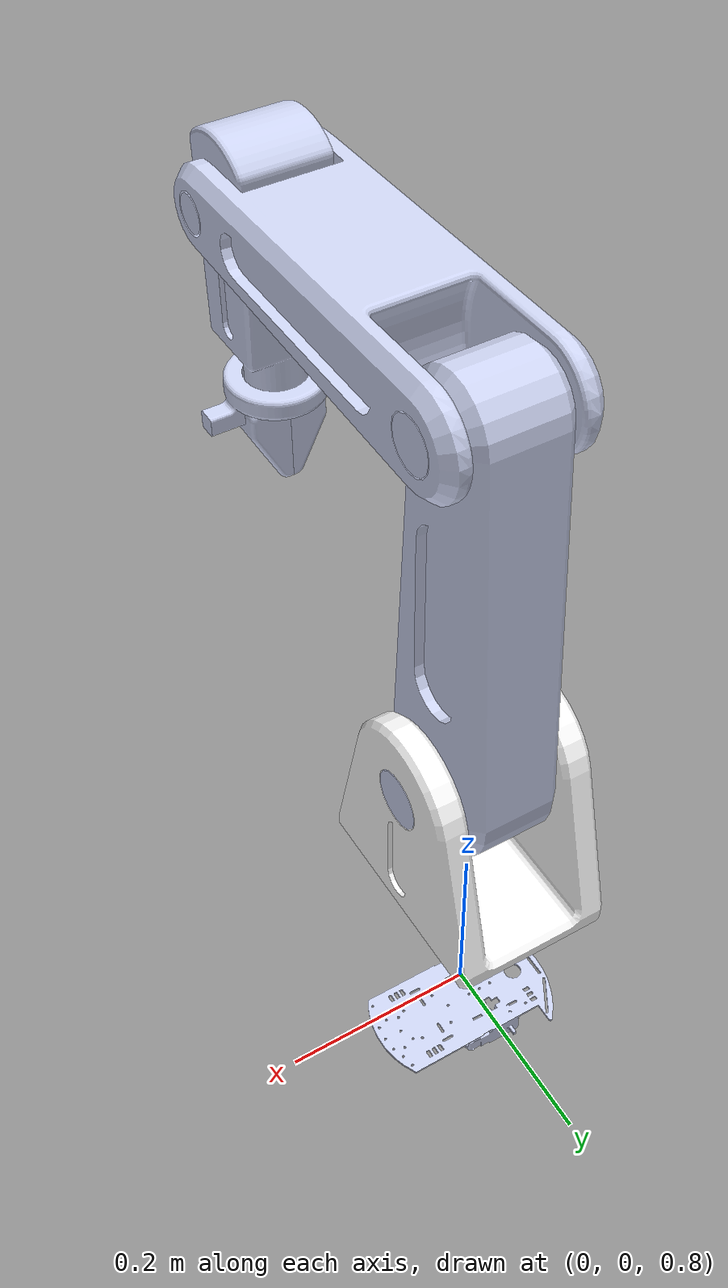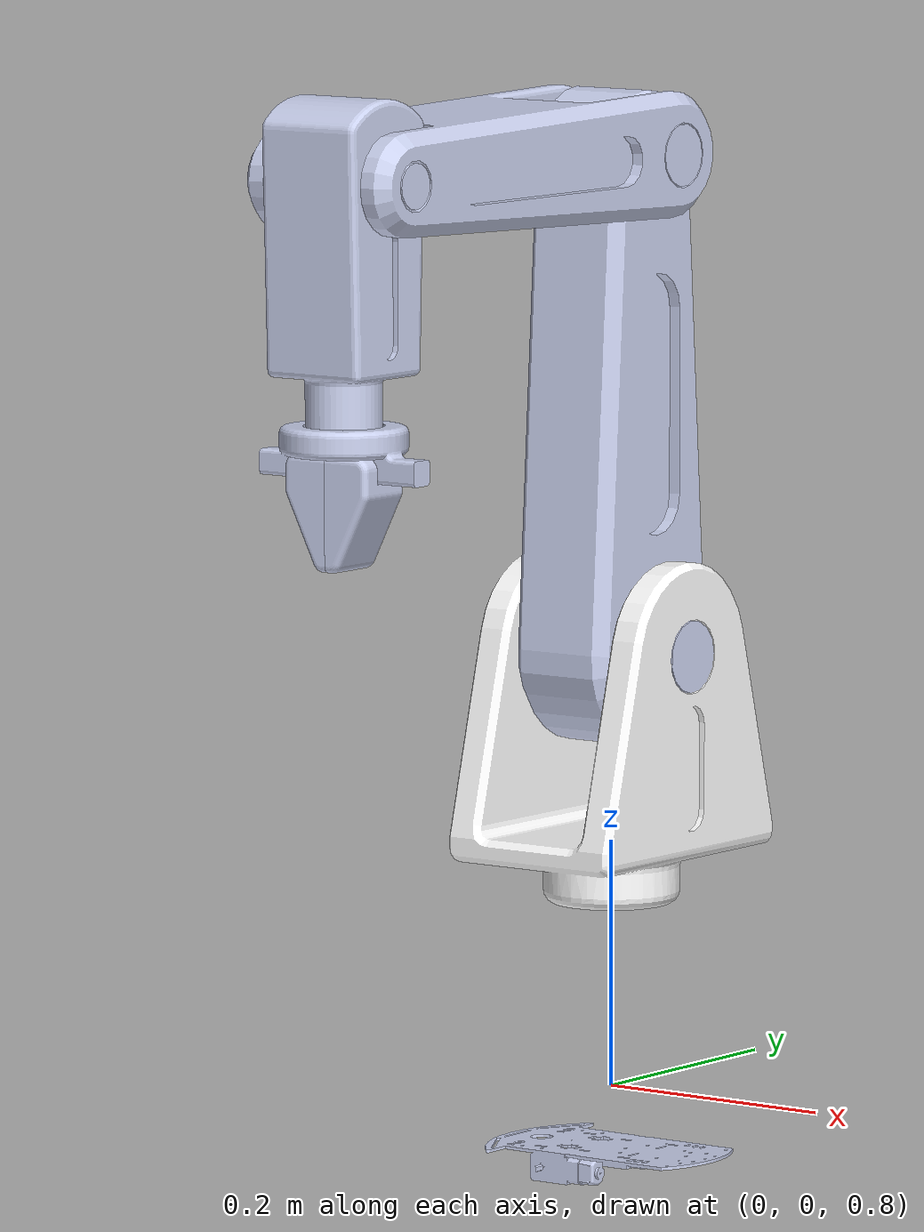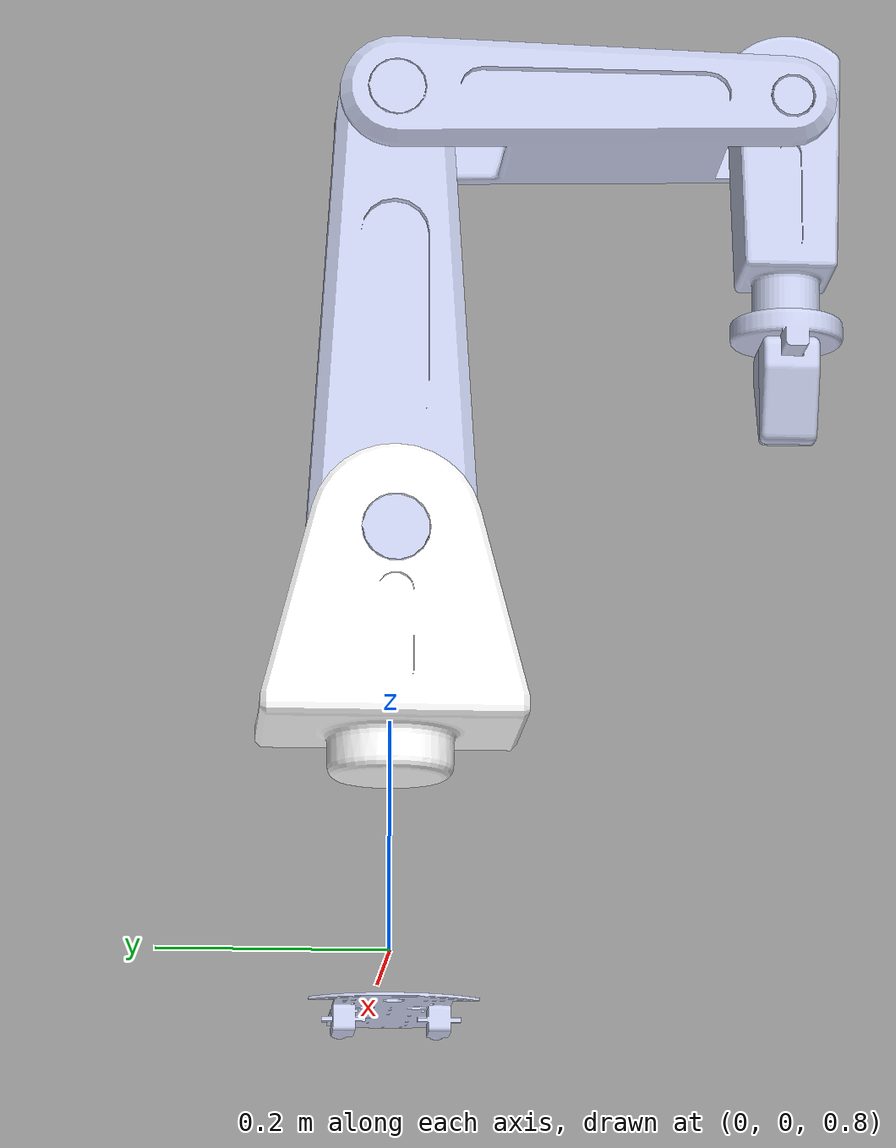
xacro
<?xml version='1.0' encoding='utf-8'?>
<robot name="robot_arm_urdf" xmlns:xacro="http://www.ros.org/wiki/xacro">
  <link name="world" />
  <link name="base_link">
    <inertial>
      <origin xyz="4.1633E-17 0 0.073876" rpy="0 0 0" />
      <mass value="17.147" />
      <inertia ixx="0.192" ixy="-4.9423E-10" ixz="1.2752E-17" iyy="0.192" iyz="2.6417E-18" izz="0.29544" />
    </inertial>
    <visual>
      <origin xyz="0 0 0" rpy="0 0 0" />
      <geometry>
        <mesh filename="package://robot_arm_urdf/meshes/base_link.STL" />
      </geometry>
      <material name="arm_material_0">
        <color rgba="0.79216 0.81961 0.93333 1" />
      </material>
    </visual>
    <collision>
      <origin xyz="0 0 0" rpy="0 0 0" />
      <geometry>
        <mesh filename="package://robot_arm_urdf/meshes/base_link.STL" />
      </geometry>
    </collision>
  </link>
  <link name="link_1">
    <inertial>
      <origin xyz="-2.5757E-14 0.11047 -7.8988E-11" rpy="0 0 0" />
      <mass value="3.0905" />
      <inertia ixx="0.026302" ixy="-2.5267E-15" ixz="-1.4177E-12" iyy="0.019632" iyz="-7.4535E-12" izz="0.025388" />
    </inertial>
    <visual>
      <origin xyz="0 0 0" rpy="0 0 0" />
      <geometry>
        <mesh filename="package://robot_arm_urdf/meshes/link_1.STL" />
      </geometry>
      <material name="arm_material_1">
        <color rgba="1 1 1 1" />
      </material>
    </visual>
    <collision>
      <origin xyz="0 0 0" rpy="0 0 0" />
      <geometry>
        <mesh filename="package://robot_arm_urdf/meshes/link_1.STL" />
      </geometry>
    </collision>
  </link>
  <joint name="joint_1" type="revolute">
    <origin xyz="0 0 0.2" rpy="1.5708 0 1.5708" />
    <parent link="base_link" />
    <child link="link_1" />
    <axis xyz="0 1 0" />
    <limit lower="0" upper="3.142" effort="300" velocity="3" />
    <dynamics damping="0.4" friction="0.05" />
  </joint>
  <link name="link_2">
    <inertial>
      <origin xyz="-1.1102E-16 0.16752 -2.498E-16" rpy="0 0 0" />
      <mass value="5.5867" />
      <inertia ixx="0.12632" ixy="8.4877E-17" ixz="7.8685E-19" iyy="0.011401" iyz="1.4432E-16" izz="0.12911" />
    </inertial>
    <visual>
      <origin xyz="0 0 0" rpy="0 0 0" />
      <geometry>
        <mesh filename="package://robot_arm_urdf/meshes/link_2.STL" />
      </geometry>
      <material name="arm_material_2">
        <color rgba="0.79216 0.81961 0.93333 1" />
      </material>
    </visual>
    <collision>
      <origin xyz="0 0 0" rpy="0 0 0" />
      <geometry>
        <mesh filename="package://robot_arm_urdf/meshes/link_2.STL" />
      </geometry>
    </collision>
  </link>
  <joint name="joint_2" type="revolute">
    <origin xyz="0 0.205 0" rpy="0 0 0" />
    <parent link="link_1" />
    <child link="link_2" />
    <axis xyz="0 0 1" />
    <limit lower="-1.57" upper="1.57" effort="200" velocity="3" />
    <dynamics damping="0.4" friction="0.05" />
  </joint>
  <link name="link_3">
    <inertial>
      <origin xyz="-0.17893 0 -1.249E-16" rpy="0 0 0" />
      <mass value="2.8262" />
      <inertia ixx="0.0074041" ixy="-1.7927E-17" ixz="4.2672E-17" iyy="0.028552" iyz="-3.4736E-10" izz="0.025128" />
    </inertial>
    <visual>
      <origin xyz="0 0 0" rpy="0 0 0" />
      <geometry>
        <mesh filename="package://robot_arm_urdf/meshes/link_3.STL" />
      </geometry>
      <material name="arm_material_3">
        <color rgba="0.79216 0.81961 0.93333 1" />
      </material>
    </visual>
    <collision>
      <origin xyz="0 0 0" rpy="0 0 0" />
      <geometry>
        <mesh filename="package://robot_arm_urdf/meshes/link_3.STL" />
      </geometry>
    </collision>
  </link>
  <joint name="joint_3" type="revolute">
    <origin xyz="0 0.4 0" rpy="0 0 0" />
    <parent link="link_2" />
    <child link="link_3" />
    <axis xyz="0 0 1" />
    <limit lower="0" upper="3.142" effort="200" velocity="3" />
    <dynamics damping="0.4" friction="0.05" />
  </joint>
  <link name="link_4">
    <inertial>
      <origin xyz="-0.051672 -2.2204E-16 -1.1102E-16" rpy="0 0 0" />
      <mass value="1.8097" />
      <inertia ixx="0.0023112" ixy="-9.6437E-18" ixz="-9.9829E-19" iyy="0.0096102" iyz="1.3194E-19" izz="0.0093908" />
    </inertial>
    <visual>
      <origin xyz="0 0 0" rpy="0 0 0" />
      <geometry>
        <mesh filename="package://robot_arm_urdf/meshes/link_4.STL" />
      </geometry>
      <material name="arm_material_4">
        <color rgba="0.79216 0.81961 0.93333 1" />
      </material>
    </visual>
    <collision>
      <origin xyz="0 0 0" rpy="0 0 0" />
      <geometry>
        <mesh filename="package://robot_arm_urdf/meshes/link_4.STL" />
      </geometry>
    </collision>
  </link>
  <joint name="joint_4" type="revolute">
    <origin xyz="-0.35 0 0" rpy="0 0 1.5708" />
    <parent link="link_3" />
    <child link="link_4" />
    <axis xyz="0 0 1" />
    <limit lower="-3.142" upper="0" effort="200" velocity="3" />
    <dynamics damping="0.4" friction="0.05" />
  </joint>
  <link name="link_5">
    <inertial>
      <origin xyz="-0.018544 0 -2.7756E-17" rpy="0 0 0" />
      <mass value="0.19053" />
      <inertia ixx="0.00030197" ixy="1.6611E-20" ixz="3.6309E-21" iyy="0.00022817" iyz="-1.9664E-11" izz="0.00011843" />
    </inertial>
    <visual>
      <origin xyz="0 0 0" rpy="0 0 0" />
      <geometry>
        <mesh filename="package://robot_arm_urdf/meshes/link_5.STL" />
      </geometry>
      <material name="arm_material_5">
        <color rgba="0.79216 0.81961 0.93333 1" />
      </material>
    </visual>
    <collision>
      <origin xyz="0 0 0" rpy="0 0 0" />
      <geometry>
        <mesh filename="package://robot_arm_urdf/meshes/link_5.STL" />
      </geometry>
    </collision>
  </link>
  <joint name="joint_5" type="revolute">
    <origin xyz="-0.188 0 0" rpy="0 0 0" />
    <parent link="link_4" />
    <child link="link_5" />
    <axis xyz="1 0 0" />
    <limit lower="0" upper="3.142" effort="200" velocity="3" />
    <dynamics damping="0.4" friction="0.05" />
  </joint>
  <link name="link_6">
    <inertial>
      <origin xyz="-0.000370000 0.000000000 -0.016013000" rpy="0 0 0" />
      <mass value="0.11653" />
      <inertia ixx="3.9246E-05" ixy="-9.4878E-20" ixz="1.0258E-05" iyy="7.1189E-05" iyz="-3.4206E-20" izz="8.4875E-05" />
    </inertial>
    <visual>
      <origin xyz="0.602 -0.4 0" rpy="0 0 0" />
      <geometry>
        <mesh filename="package://robot_arm_urdf/meshes/link_6.STL" />
      </geometry>
      <material name="arm_material_6">
        <color rgba="0.79216 0.81961 0.93333 1" />
      </material>
    </visual>
    <collision>
      <origin xyz="0.602 -0.4 0" rpy="0 0 0" />
      <geometry>
        <mesh filename="package://robot_arm_urdf/meshes/link_6.STL" />
      </geometry>
    </collision>
  </link>
  <joint name="joint_6" type="prismatic">
    <origin xyz="-0.062 0 0" rpy="0 0 0" />
    <parent link="link_5" />
    <child link="link_6" />
    <axis xyz="0 0 -1" />
    <limit lower="0" upper="0.03" effort="100" velocity="0.05" />
    <dynamics damping="0.1" friction="0.05" />
  </joint>
  <link name="link_7">
    <inertial>
      <origin xyz="-0.000370000 0.000000000 -0.016013000" rpy="0 0 0" />
      <mass value="0.11653" />
      <inertia ixx="3.9246E-05" ixy="-4.7946E-20" ixz="1.0258E-05" iyy="7.1189E-05" iyz="-3.946E-20" izz="8.4875E-05" />
    </inertial>
    <visual>
      <origin xyz="0.602 -0.4 0" rpy="0 0 0" />
      <geometry>
        <mesh filename="package://robot_arm_urdf/meshes/link_7.STL" />
      </geometry>
      <material name="arm_material_7">
        <color rgba="0.79216 0.81961 0.93333 1" />
      </material>
    </visual>
    <collision>
      <origin xyz="0.602 -0.4 0" rpy="0 0 0" />
      <geometry>
        <mesh filename="package://robot_arm_urdf/meshes/link_7.STL" />
      </geometry>
    </collision>
  </link>
  <joint name="joint_7" type="prismatic">
    <origin xyz="-0.062 0 0" rpy="3.141592653589793 0 0" />
    <parent link="link_5" />
    <child link="link_7" />
    <axis xyz="0 0 1" />
    <limit lower="-0.03" upper="0" effort="100" velocity="0.05" />
    <dynamics damping="0.1" friction="0.05" />
  </joint>
  <xacro:arg name="table_height" default="0.75" />
  <xacro:arg name="controllers_file" default="$(find arm_pick_place)/config/controllers.yaml" />
  <joint name="world_to_base" type="fixed">
    <parent link="world" />
    <child link="base_link" />
    <origin xyz="0 0 $(arg table_height)" rpy="0 0 0" />
  </joint>
  <link name="tool0" />
  <joint name="tool0_fixed" type="fixed">
    <parent link="link_5" />
    <child link="tool0" />
    <origin xyz="-0.092 0 0" rpy="0 0 0" />
  </joint>
  <ros2_control name="GazeboSystem" type="system">
    <hardware>
      <plugin>gazebo_ros2_control/GazeboSystem</plugin>
    </hardware>
    <joint name="joint_1">
      <command_interface name="position" />
      <state_interface name="position">
        <param name="initial_value">1.5707963</param>
      </state_interface>
      <state_interface name="velocity" />
    </joint>
    <joint name="joint_2">
      <command_interface name="position" />
      <state_interface name="position">
        <param name="initial_value">0</param>
      </state_interface>
      <state_interface name="velocity" />
    </joint>
    <joint name="joint_3">
      <command_interface name="position" />
      <state_interface name="position">
        <param name="initial_value">0</param>
      </state_interface>
      <state_interface name="velocity" />
    </joint>
    <joint name="joint_4">
      <command_interface name="position" />
      <state_interface name="position">
        <param name="initial_value">-1.5707963</param>
      </state_interface>
      <state_interface name="velocity" />
    </joint>
    <joint name="joint_5">
      <command_interface name="position" />
      <state_interface name="position">
        <param name="initial_value">1.5707963</param>
      </state_interface>
      <state_interface name="velocity" />
    </joint>
    <joint name="joint_6">
      <command_interface name="position" />
      <state_interface name="position">
        <param name="initial_value">0.03</param>
      </state_interface>
      <state_interface name="velocity" />
    </joint>
    <joint name="joint_7">
      <command_interface name="position" />
      <state_interface name="position">
        <param name="initial_value">-0.03</param>
      </state_interface>
      <state_interface name="velocity" />
    </joint>
  </ros2_control>
  <gazebo>
    <plugin name="gazebo_ros2_control" filename="libgazebo_ros2_control.so">
      <parameters>$(arg controllers_file)</parameters>
    </plugin>
    <plugin name="grasp_assist" filename="libgrasp_assist.so">
      <tcp_offset>-0.092 0 0</tcp_offset>
      <block_size>0.05</block_size>
    </plugin>
  </gazebo>
  <gazebo reference="base_link">
    <material>Gazebo/Grey</material>
    <selfCollide>false</selfCollide>
  </gazebo>
  <gazebo reference="link_1">
    <material>Gazebo/Grey</material>
    <selfCollide>false</selfCollide>
  </gazebo>
  <gazebo reference="link_2">
    <material>Gazebo/Grey</material>
    <selfCollide>false</selfCollide>
  </gazebo>
  <gazebo reference="link_3">
    <material>Gazebo/Grey</material>
    <selfCollide>false</selfCollide>
  </gazebo>
  <gazebo reference="link_4">
    <material>Gazebo/Grey</material>
    <selfCollide>false</selfCollide>
  </gazebo>
  <gazebo reference="link_5">
    <material>Gazebo/DarkGrey</material>
    <selfCollide>false</selfCollide>
  </gazebo>
  <gazebo reference="link_6">
    <material>Gazebo/DarkGrey</material>
    <selfCollide>false</selfCollide>
    <mu1>1.0</mu1>
    <mu2>1.0</mu2>
  </gazebo>
  <gazebo reference="link_7">
    <material>Gazebo/DarkGrey</material>
    <selfCollide>false</selfCollide>
    <mu1>1.0</mu1>
    <mu2>1.0</mu2>
  </gazebo>
</robot>
